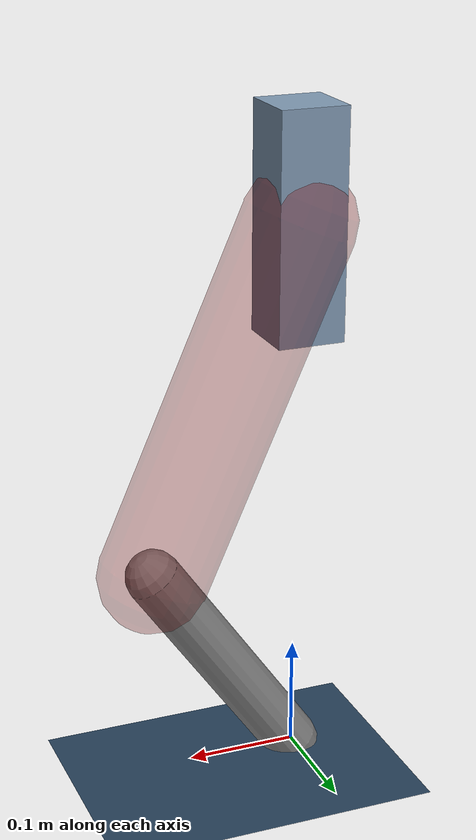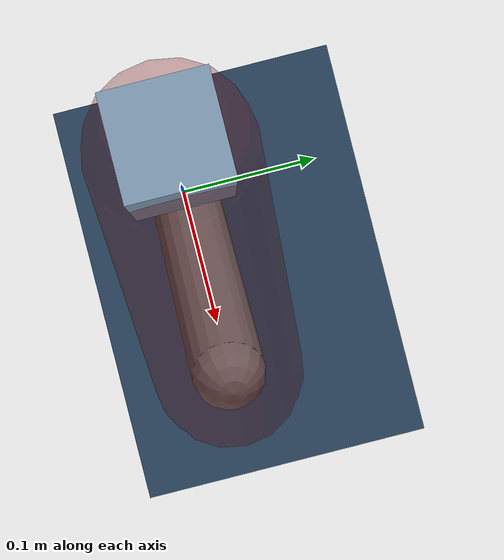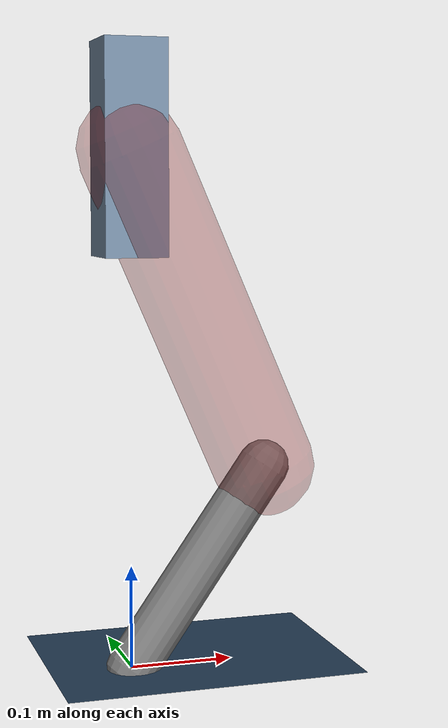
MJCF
<mujoco model="Hopper2D">
	<compiler inertiafromgeom="true" angle="radian" />
	<option timestep="0.001" integrator="implicit" cone="elliptic" solver="Newton" tolerance="1e-10" />

	<default>
		<geom contype="1" conaffinity="1" condim="3" friction="2 0.005 0.0001" solref="0.005 1" />
		<joint limited="true" damping="0.1" />
	</default>

	<asset>
		<texture name="skybox" type="skybox" builtin="gradient" rgb1=".4 .6 .8" rgb2="0 0 0" width="800" height="800" />
		<texture name="grid" type="2d" builtin="checker" rgb1=".1 .2 .3" rgb2=".2 .3 .4" width="300" height="300" mark="edge" markrgb=".2 .3 .4" />
		<material name="ground" texture="grid" texrepeat="1 1" texuniform="true" reflectance="0.1" />
		<material name="leg" rgba="0.5 0.6 0.7 1" />
	</asset>

	<worldbody>

		<geom name="floor" type="plane" size="5 5 0.25" material="ground" />

		<light directional="false" diffuse="0.8 0.8 0.8" specular="0.3 0.3 0.3" pos="0 0 2" dir="0 0 -1" />
		<light mode="targetbodycom" target="base" directional="false" diffuse="0.8 0.8 0.8" specular="0.3 0.3 0.3" pos="0 0 2" dir="0 0 -1" />

		<camera name="fixed" pos="0 -2 1" xyaxes="1 0 0 0 0 1" />
		<camera name="tracking" mode="trackcom" pos="0 -3 1" />

		<body name="root" pos="0 0 0.49797671463347126">
			<joint name="slide_x" type="slide" axis="1 0 0" range="-100 100" />
			<joint name="slide_z" type="slide" axis="0 0 1" range="0 10" />

			<body name="base" pos="0 0 0">
				<geom name="torso" type="box" size="0.03 0.03 0.1" mass="2.948" material="leg" />

				<body name="link1" pos="0 0 0" euler="0 1.1568327387990271 0">
					<joint type="hinge" axis="0 -1 0" pos="0 0 0" name="hinge1" limited="true" range="-3.14 3.14" stiffness="0" damping="0.1" />
					<geom name="thigh" type="capsule" fromto="0 0 0 0.33359810569167636 0 0" size="0.05" rgba="0.5 0 0 0.3" mass="1.0808148853675261" />

					<body name="link2" pos="0.33359810569167636 0 0" euler="0 1.0225862967935833 0">
						<joint type="hinge" axis="0 -1 0" pos="0 0 0" name="hinge2" limited="true" range="-3.14 3.14" stiffness="0" damping="0.1" />
						<geom name="shank" type="capsule" fromto="0 0 0 0.23470002420456065 0 0" size="0.025" mass="0.42986001936364854" />

					</body>
				</body>
			</body>
		</body>
	</worldbody>

	<actuator>
		<motor name="torque1" joint="hinge1" ctrlrange="-146.24452903521663 146.24452903521663" ctrllimited="true" gear="1" />
		<motor name="torque2" joint="hinge2" ctrlrange="-73.50597264269575 73.50597264269575" ctrllimited="true" gear="1" />
	</actuator>
</mujoco>
